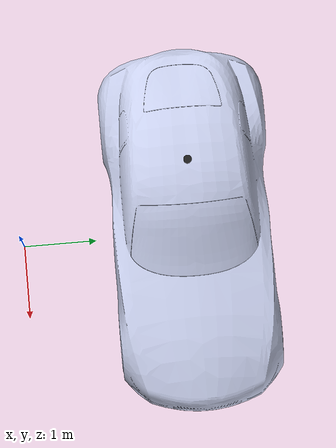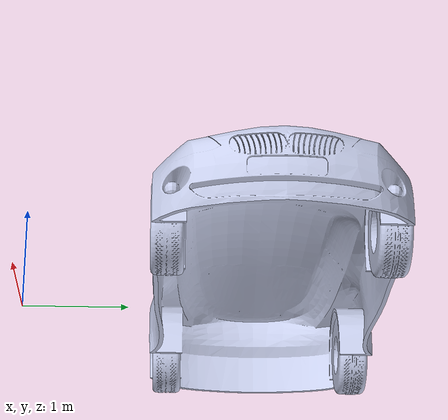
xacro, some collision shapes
<?xml version="1.0" encoding="utf-8"?>
<robot name="vehicle" xmlns:xacro="http://ros.org/wiki/xacro">
  <xacro:property name="M_PI" value="3.1415926535897931" />
  <link
    name="base_link"/>
  <link
    name="chassis">
    <inertial>
      <origin
        xyz="0 0 2"
        rpy="0 0 0" />
      <mass
        value="1020" />
      <inertia
        ixx="1310"
        ixy="-4.5898"
        ixz="-6.4037"
        iyy="15481"
        iyz="-765.78"
        izz="5698.5" />
    </inertial>
    <visual>
      <origin
        xyz="0 0 0"
        rpy="0 0 0" />
      <geometry>
        <mesh
          filename="package://robots_description/meshes/chassis.STL" />
      </geometry>
      <material
        name="">
        <color
          rgba="0.79216 0.81961 0.93333 1" />
      </material>
    </visual>
    <collision>
      <origin
        xyz="0 0 0"
        rpy="0 0 0" />
      <geometry>
        <mesh
          filename="package://robots_description/meshes/chassis.STL" />
      </geometry>
    </collision>
  </link>
  <joint
    name="base_link_connection"
    type="fixed">
    <origin
      xyz="-0.0014967 2.3251 -0.048125"
      rpy="0 0 0" />
    <parent
      link="base_link" />
    <child
      link="chassis" />
    <axis
      xyz="0 0 0" />
  </joint>
  <link
    name="front_left_wheel">
    <inertial>
      <origin
        xyz="2.1476E-07 -1.7776E-06 -0.14199"
        rpy="0 0 0" />
      <mass
        value="110.44" />
      <inertia
        ixx="6.0553"
        ixy="-1.4262E-05"
        ixz="2.0423E-05"
        iyy="6.0552"
        iyz="2.6023E-06"
        izz="10.742" />
    </inertial>
    <visual>
      <origin
        xyz="0 0 0"
        rpy="0 0 0" />
      <geometry>
        <mesh
          filename="package://robots_description/meshes/front_left_wheel.STL" />
      </geometry>
      <material
        name="">
        <color
          rgba="0.79216 0.81961 0.93333 1" />
      </material>
    </visual>
    <collision>
      <origin
        xyz="0 0 0"
        rpy="0 0 0" />
      <geometry>
        <mesh
          filename="package://robots_description/meshes/front_left_wheel.STL" />
      </geometry>
    </collision>
  </link>
  <joint
    name="front_left_joint"
    type="continuous">
    <origin
      xyz="1.491 0.81576 0.17243"
      rpy="-1.5708 1.49 3.1416" />
    <parent
      link="chassis" />
    <child
      link="front_left_wheel" />
    <axis
      xyz="0 0 1" />
  </joint>
  <link
    name="rear_left_wheel">
    <inertial>
      <origin
        xyz="-1.0487E-07 -1.74E-06 -0.14199"
        rpy="0 0 0" />
      <mass
        value="110.44" />
      <inertia
        ixx="6.0553"
        ixy="-1.0705E-05"
        ixz="1.8345E-05"
        iyy="6.0553"
        iyz="2.9158E-06"
        izz="10.742" />
    </inertial>
    <visual>
      <origin
        xyz="0 0 0"
        rpy="0 0 0" />
      <geometry>
        <mesh
          filename="package://robots_description/meshes/rear_left_wheel.STL" />
      </geometry>
      <material
        name="">
        <color
          rgba="0.79216 0.81961 0.93333 1" />
      </material>
    </visual>
    <collision>
      <origin
        xyz="0 0 0"
        rpy="0 0 0" />
      <geometry>
        <mesh
          filename="package://robots_description/meshes/rear_left_wheel.STL" />
      </geometry>
    </collision>
  </link>
  <joint
    name="rear_left_joint"
    type="continuous">
    <origin
      xyz="-1.553 0.81576 0.17243"
      rpy="1.5708 0.57871 0" />
    <parent
      link="chassis" />
    <child
      link="rear_left_wheel" />
    <axis
      xyz="0 0 1" />
  </joint>
  <link
    name="front_right_wheel">
    <inertial>
      <origin
        xyz="2.4579E-08 -1.4767E-06 -0.14199"
        rpy="0 0 0" />
      <mass
        value="110.44" />
      <inertia
        ixx="6.0553"
        ixy="-1.1017E-05"
        ixz="1.8997E-05"
        iyy="6.0552"
        iyz="5.1083E-06"
        izz="10.742" />
    </inertial>
    <visual>
      <origin
        xyz="0 0 0"
        rpy="0 0 0" />
      <geometry>
        <mesh
          filename="package://robots_description/meshes/front_right_wheel.STL" />
      </geometry>
      <material
        name="">
        <color
          rgba="0.79216 0.81961 0.93333 1" />
      </material>
    </visual>
    <collision>
      <origin
        xyz="0 0 0"
        rpy="0 0 0" />
      <geometry>
        <mesh
          filename="package://robots_description/meshes/front_right_wheel.STL" />
      </geometry>
    </collision>
  </link>
  <joint
    name="front_right_joint"
    type="continuous">
    <origin
      xyz="1.491 -0.81576 0.17243"
      rpy="-1.5708 -0.13053 0" />
    <parent
      link="chassis" />
    <child
      link="front_right_wheel" />
    <axis
      xyz="0 0 1" />
  </joint>
  <link
    name="rear_right_wheel">
    <inertial>
      <origin
        xyz="-9.3655E-08 -1.2118E-06 -0.14199"
        rpy="0 0 0" />
      <mass
        value="110.44" />
      <inertia
        ixx="6.0553"
        ixy="-9.8279E-06"
        ixz="1.796E-05"
        iyy="6.0552"
        iyz="7.0744E-06"
        izz="10.742" />
    </inertial>
    <visual>
      <origin
        xyz="0 0 0"
        rpy="0 0 0" />
      <geometry>
        <mesh
          filename="package://robots_description/meshes/rear_right_wheel.STL" />
      </geometry>
      <material
        name="">
        <color
          rgba="0.79216 0.81961 0.93333 1" />
      </material>
    </visual>
    <collision>
      <origin
        xyz="0 0 0"
        rpy="0 0 0" />
      <geometry>
        <mesh
          filename="package://robots_description/meshes/rear_right_wheel.STL" />
      </geometry>
    </collision>
  </link>
  <joint
    name="rear_right_joint"
    type="continuous">
    <origin
      xyz="-1.553 -0.81576 0.17243"
      rpy="1.5708 -0.027344 3.1416" />
    <parent
      link="chassis" />
    <child
      link="rear_right_wheel" />
    <axis
      xyz="0 0 1" />
  </joint>
 <!-- Sensor link and joint -->
  <!-- LiDAR link and joint -->
  <joint name="scan_joint" type="fixed">
    <parent link="chassis"/>
    <child link="base_scan"/>
    <origin xyz="-0.8 0 1.4" rpy="0 0 0"/>
  </joint>
  <link name="base_scan">
    <visual>
      <origin xyz="0 0 0" rpy="0 0 0"/>
      <geometry>
        <mesh filename="package://robots_description/meshes/sensors/lds.stl" scale="0.001 0.001 0.001"/>
      </geometry>
      <material name="dark"/>
    </visual>

    <collision>
      <origin xyz="0.015 0 -0.0065" rpy="0 0 0"/>
      <geometry>
        <cylinder length="0.0315" radius="0.055"/>
      </geometry>
    </collision>

    <inertial>
      <mass value="0.114" />
      <origin xyz="0 0 0" />
      <inertia ixx="0.001" ixy="0.0" ixz="0.0"
               iyy="0.001" iyz="0.0"
               izz="0.001" />
    </inertial>
  </link>
  <!-- IMU link and joint -->
  <joint name="imu_joint" type="fixed">
    <parent link="chassis"/>
    <child link="imu_link"/>
    <origin xyz="0 0 0" rpy="0 0 0"/>
  </joint>
  <link name="imu_link"/>
  <!-- GPS link and joint -->
  <joint name="gps_joint" type="fixed">
    <parent link="chassis"/>
    <child link="gps_link"/>
    <origin xyz="0 0 0" rpy="0 0 0"/>
  </joint>
  <link name="gps_link"/>
  <!-- Camera link and joint -->

  <!-- UWB link and joint -->

                                <!-- Drive controller -->
<gazebo>
  <plugin name="skid_steer_drive_controller" filename="libgazebo_ros_skid_steer_drive.so">
    <updateRate>100.0</updateRate>
    <robotNamespace>/</robotNamespace>
    <leftFrontJoint>front_left_joint</leftFrontJoint>
    <rightFrontJoint>front_right_joint</rightFrontJoint>
    <leftRearJoint>rear_left_joint</leftRearJoint>
    <rightRearJoint>rear_right_joint</rightRearJoint>
    <wheelSeparation>2.408</wheelSeparation>
    <wheelDiameter>0.80685</wheelDiameter>
    <torque>10000000</torque>
    <commandTopic>cmd_vel</commandTopic>
    <odometryTopic>odom</odometryTopic>
    <odometryFrame>odom</odometryFrame>
    <robotBaseFrame>base_link</robotBaseFrame>
    <broadcastTF>1</broadcastTF>
  </plugin>
</gazebo>
<gazebo>
  <plugin name="p3d_base_controller" filename="libgazebo_ros_p3d.so">
    <alwaysOn>true</alwaysOn>
    <updateRate>50.0</updateRate>
    <bodyName>base_link</bodyName>
    <topicName>groundtruth/state</topicName>
    <gaussianNoise>0.0</gaussianNoise>
    <frameName>world</frameName>
    <xyzOffsets>0 0 0</xyzOffsets>
    <rpyOffsets>0 0 0</rpyOffsets>
  </plugin>
</gazebo>                                 <!-- Sensor settings -->
  <!-- IMU settings -->
  <gazebo>
    <plugin name="imu_plugin" filename="libgazebo_ros_imu.so">
      <alwaysOn>true</alwaysOn>
      <bodyName>imu_link</bodyName>
      <frameName>imu_link</frameName>
      <topicName>imu</topicName>
      <serviceName>imu_service</serviceName>
      <gaussianNoise>0.0</gaussianNoise>
      <updateRate>200</updateRate>
      <imu>
        <noise>
          <type>gaussian</type>
          <rate>
            <mean>0.0</mean>
            <stddev>2e-4</stddev>
            <bias_mean>0.0000075</bias_mean>
            <bias_stddev>0.0000008</bias_stddev>
          </rate>
          <accel>
            <mean>0.0</mean>
            <stddev>1.7e-2</stddev>
            <bias_mean>0.1</bias_mean>
            <bias_stddev>0.001</bias_stddev>
          </accel>
        </noise>
      </imu>
    </plugin>
  </gazebo>
  <!-- Camera settings -->

  <!-- LiDAR settings -->
  <gazebo reference="base_scan">
    <material>Gazebo/FlatBlack</material>
    <sensor type="ray" name="lds_lfcd_sensor">
      <pose>0 0 0 0 0 0</pose>
      <visualize>false</visualize>
      <update_rate>10</update_rate>
      <ray>
        <scan>
          <horizontal>
            <samples>360</samples>
            <resolution>1</resolution>
            <min_angle>0.0</min_angle>
            <max_angle>6.28319</max_angle>
          </horizontal>
        </scan>
        <range>
          <min>0.3</min>
          <max>50</max>
          <resolution>0.001</resolution>
        </range>
        <noise>
          <type>gaussian</type>
          <mean>0.0</mean>
          <stddev>0.01</stddev>
        </noise>
      </ray>
      <plugin name="gazebo_ros_lds_lfcd_controller" filename="libgazebo_ros_laser.so">
        <topicName>scan</topicName>
        <frameName>base_scan</frameName>
      </plugin>
    </sensor>
  </gazebo>
  <!-- GPS settings -->
  <gazebo>
      <plugin name="gps" filename="libhector_gazebo_ros_gps.so">
          <updateRate>10.0</updateRate>
          <topicName>sensor_msgs/NavSatFix</topicName>
          <gaussianNoise>0.0 0.0 0.0</gaussianNoise>
          <offset>0 0 0</offset>
          <velocityGaussianNoise>0 0 0</velocityGaussianNoise>
          <frameId>steerbot_footprint</frameId>
      </plugin>
  </gazebo>
  <!-- UWB settings -->
</robot>
